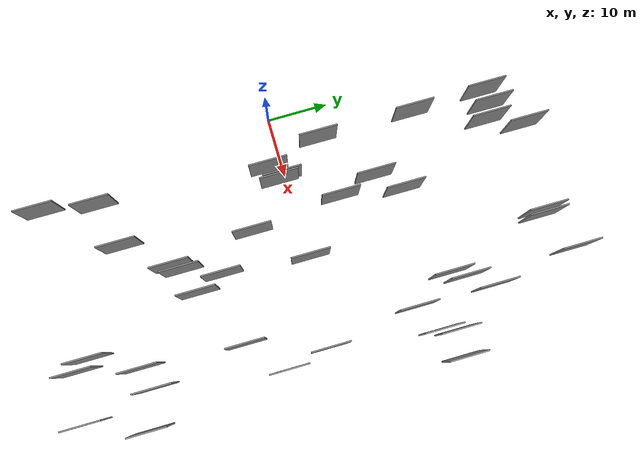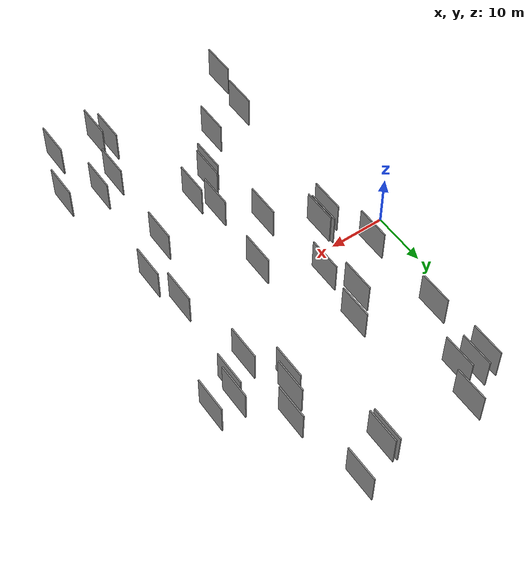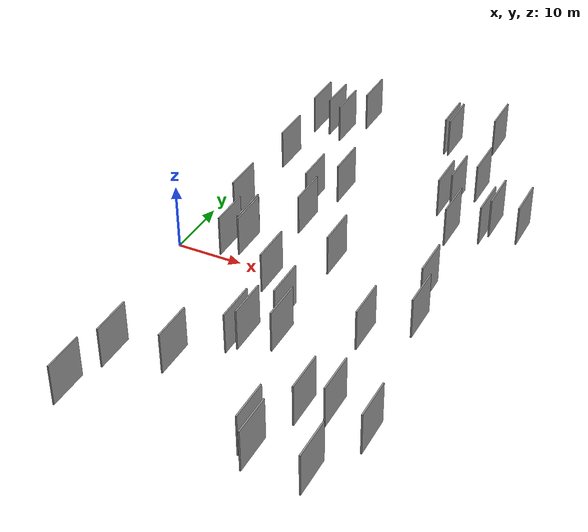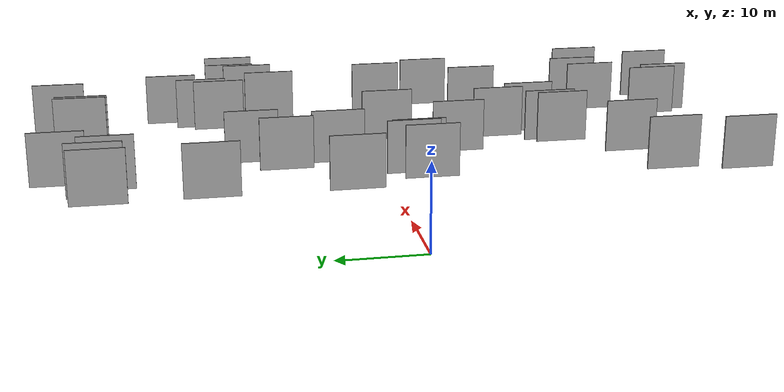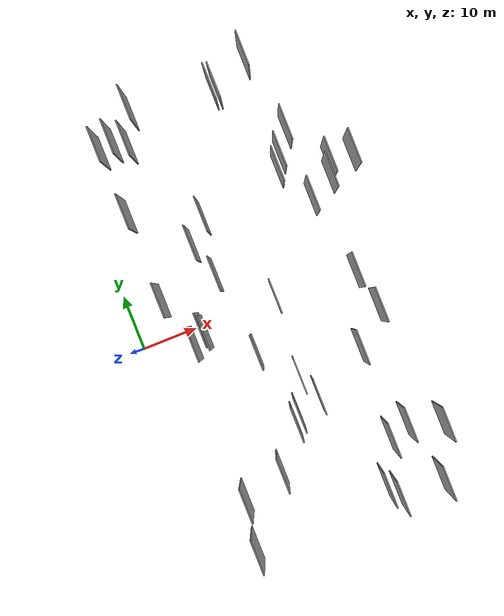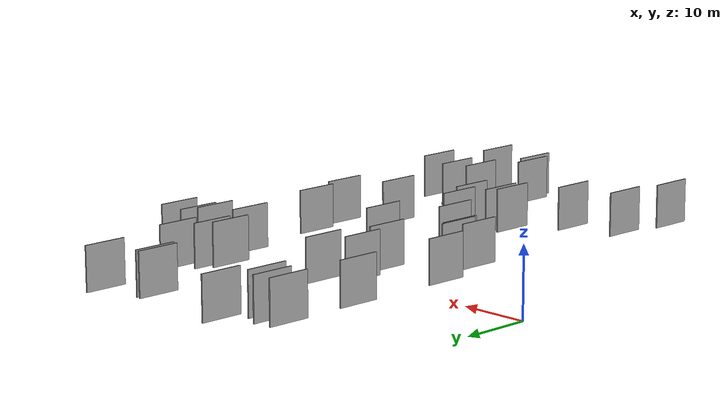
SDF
<sdf version="1.6">
 <world name="default">
  <scene>
   <sky><clouds><speed>12</speed></clouds></sky>
   <ambient>0.4 0.4 0.4 1</ambient>
   <background>0.7 0.7 0.7 1</background>
   <shadows>1</shadows>
  </scene>
  <gravity>0 0 -9.8066</gravity>
  <magnetic_field>6e-06 2.3e-05 -4.2e-05</magnetic_field>
  <physics default="0" name="default_physics" type="ode">
   <ode>
    <solver>
     <type>quick</type>
     <iters>10</iters>
     <sor>1.0</sor>
     <use_dynamic_moi_rescaling>0</use_dynamic_moi_rescaling>
    </solver>
    <constraints>
     <cfm>0</cfm>
     <erp>0.2</erp>
     <contact_max_correcting_vel>100</contact_max_correcting_vel>
     <contact_surface_layer>0.001</contact_surface_layer>
    </constraints>
   </ode>
   <max_step_size>0.004</max_step_size>
   <real_time_factor>1</real_time_factor>
   <real_time_update_rate>250</real_time_update_rate>
  </physics>
  <light name="sun" type="directional">
   <pose>0 0 10 0 0 0</pose>
   <diffuse>0.8 0.8 0.8 1</diffuse>
   <specular>0.2 0.2 0.2 1</specular>
   <attenuation>
    <range>1000</range>
    <constant>0.9</constant>
    <linear>0.01</linear>
    <quadratic>0.001</quadratic>
   </attenuation>
   <direction>-0.5 0.1 -0.9</direction>
  </light>
  <model name="grey_wall_1">
   <static>1</static>
   <pose>39.0062 -0.8579 5.0 0.000000 0.000000 1.570796</pose>
   <link name="link">
    <pose>0 0 3.00 0 0 0</pose>
    <collision name="collision"><geometry><box><size>6.00 0.2 6.00</size></box></geometry></collision>
    <visual name="visual">
     <cast_shadows>0</cast_shadows>
     <geometry><box><size>6.00 0.2 6.00</size></box></geometry>
     <material>
      <script>
       <uri>model://grey_wall/materials/scripts</uri>
       <uri>model://grey_wall/materials/textures</uri>
       <name>vrc/grey_wall</name>
      </script>
     </material>
    </visual>
   </link>
  </model>
  <model name="grey_wall_2">
   <static>1</static>
   <pose>7.4151 6.3109 5.0 0.000000 0.000000 1.570796</pose>
   <link name="link">
    <pose>0 0 3.00 0 0 0</pose>
    <collision name="collision"><geometry><box><size>6.00 0.2 6.00</size></box></geometry></collision>
    <visual name="visual">
     <cast_shadows>0</cast_shadows>
     <geometry><box><size>6.00 0.2 6.00</size></box></geometry>
     <material>
      <script>
       <uri>model://grey_wall/materials/scripts</uri>
       <uri>model://grey_wall/materials/textures</uri>
       <name>vrc/grey_wall</name>
      </script>
     </material>
    </visual>
   </link>
  </model>
  <model name="grey_wall_3">
   <static>1</static>
   <pose>9.5300 33.5643 5.0 0.000000 0.000000 1.570796</pose>
   <link name="link">
    <pose>0 0 3.00 0 0 0</pose>
    <collision name="collision"><geometry><box><size>6.00 0.2 6.00</size></box></geometry></collision>
    <visual name="visual">
     <cast_shadows>0</cast_shadows>
     <geometry><box><size>6.00 0.2 6.00</size></box></geometry>
     <material>
      <script>
       <uri>model://grey_wall/materials/scripts</uri>
       <uri>model://grey_wall/materials/textures</uri>
       <name>vrc/grey_wall</name>
      </script>
     </material>
    </visual>
   </link>
  </model>
  <model name="grey_wall_4">
   <static>1</static>
   <pose>34.2596 -28.3385 5.0 0.000000 0.000000 1.570796</pose>
   <link name="link">
    <pose>0 0 3.00 0 0 0</pose>
    <collision name="collision"><geometry><box><size>6.00 0.2 6.00</size></box></geometry></collision>
    <visual name="visual">
     <cast_shadows>0</cast_shadows>
     <geometry><box><size>6.00 0.2 6.00</size></box></geometry>
     <material>
      <script>
       <uri>model://grey_wall/materials/scripts</uri>
       <uri>model://grey_wall/materials/textures</uri>
       <name>vrc/grey_wall</name>
      </script>
     </material>
    </visual>
   </link>
  </model>
  <model name="grey_wall_5">
   <static>1</static>
   <pose>11.9339 -0.6346 5.0 0.000000 0.000000 1.570796</pose>
   <link name="link">
    <pose>0 0 3.00 0 0 0</pose>
    <collision name="collision"><geometry><box><size>6.00 0.2 6.00</size></box></geometry></collision>
    <visual name="visual">
     <cast_shadows>0</cast_shadows>
     <geometry><box><size>6.00 0.2 6.00</size></box></geometry>
     <material>
      <script>
       <uri>model://grey_wall/materials/scripts</uri>
       <uri>model://grey_wall/materials/textures</uri>
       <name>vrc/grey_wall</name>
      </script>
     </material>
    </visual>
   </link>
  </model>
  <model name="grey_wall_6">
   <static>1</static>
   <pose>15.5540 13.0088 5.0 0.000000 0.000000 1.570796</pose>
   <link name="link">
    <pose>0 0 3.00 0 0 0</pose>
    <collision name="collision"><geometry><box><size>6.00 0.2 6.00</size></box></geometry></collision>
    <visual name="visual">
     <cast_shadows>0</cast_shadows>
     <geometry><box><size>6.00 0.2 6.00</size></box></geometry>
     <material>
      <script>
       <uri>model://grey_wall/materials/scripts</uri>
       <uri>model://grey_wall/materials/textures</uri>
       <name>vrc/grey_wall</name>
      </script>
     </material>
    </visual>
   </link>
  </model>
  <model name="grey_wall_7">
   <static>1</static>
   <pose>7.3764 21.5910 5.0 0.000000 0.000000 1.570796</pose>
   <link name="link">
    <pose>0 0 3.00 0 0 0</pose>
    <collision name="collision"><geometry><box><size>6.00 0.2 6.00</size></box></geometry></collision>
    <visual name="visual">
     <cast_shadows>0</cast_shadows>
     <geometry><box><size>6.00 0.2 6.00</size></box></geometry>
     <material>
      <script>
       <uri>model://grey_wall/materials/scripts</uri>
       <uri>model://grey_wall/materials/textures</uri>
       <name>vrc/grey_wall</name>
      </script>
     </material>
    </visual>
   </link>
  </model>
  <model name="grey_wall_8">
   <static>1</static>
   <pose>15.6674 -27.0964 5.0 0.000000 0.000000 1.570796</pose>
   <link name="link">
    <pose>0 0 3.00 0 0 0</pose>
    <collision name="collision"><geometry><box><size>6.00 0.2 6.00</size></box></geometry></collision>
    <visual name="visual">
     <cast_shadows>0</cast_shadows>
     <geometry><box><size>6.00 0.2 6.00</size></box></geometry>
     <material>
      <script>
       <uri>model://grey_wall/materials/scripts</uri>
       <uri>model://grey_wall/materials/textures</uri>
       <name>vrc/grey_wall</name>
      </script>
     </material>
    </visual>
   </link>
  </model>
  <model name="grey_wall_9">
   <static>1</static>
   <pose>14.0263 37.6488 5.0 0.000000 0.000000 1.570796</pose>
   <link name="link">
    <pose>0 0 3.00 0 0 0</pose>
    <collision name="collision"><geometry><box><size>6.00 0.2 6.00</size></box></geometry></collision>
    <visual name="visual">
     <cast_shadows>0</cast_shadows>
     <geometry><box><size>6.00 0.2 6.00</size></box></geometry>
     <material>
      <script>
       <uri>model://grey_wall/materials/scripts</uri>
       <uri>model://grey_wall/materials/textures</uri>
       <name>vrc/grey_wall</name>
      </script>
     </material>
    </visual>
   </link>
  </model>
  <model name="grey_wall_10">
   <static>1</static>
   <pose>11.7766 32.4227 5.0 0.000000 0.000000 1.570796</pose>
   <link name="link">
    <pose>0 0 3.00 0 0 0</pose>
    <collision name="collision"><geometry><box><size>6.00 0.2 6.00</size></box></geometry></collision>
    <visual name="visual">
     <cast_shadows>0</cast_shadows>
     <geometry><box><size>6.00 0.2 6.00</size></box></geometry>
     <material>
      <script>
       <uri>model://grey_wall/materials/scripts</uri>
       <uri>model://grey_wall/materials/textures</uri>
       <name>vrc/grey_wall</name>
      </script>
     </material>
    </visual>
   </link>
  </model>
  <model name="grey_wall_11">
   <static>1</static>
   <pose>9.9371 -2.2960 5.0 0.000000 0.000000 1.570796</pose>
   <link name="link">
    <pose>0 0 3.00 0 0 0</pose>
    <collision name="collision"><geometry><box><size>6.00 0.2 6.00</size></box></geometry></collision>
    <visual name="visual">
     <cast_shadows>0</cast_shadows>
     <geometry><box><size>6.00 0.2 6.00</size></box></geometry>
     <material>
      <script>
       <uri>model://grey_wall/materials/scripts</uri>
       <uri>model://grey_wall/materials/textures</uri>
       <name>vrc/grey_wall</name>
      </script>
     </material>
    </visual>
   </link>
  </model>
  <model name="grey_wall_12">
   <static>1</static>
   <pose>43.3051 -29.1401 5.0 0.000000 0.000000 1.570796</pose>
   <link name="link">
    <pose>0 0 3.00 0 0 0</pose>
    <collision name="collision"><geometry><box><size>6.00 0.2 6.00</size></box></geometry></collision>
    <visual name="visual">
     <cast_shadows>0</cast_shadows>
     <geometry><box><size>6.00 0.2 6.00</size></box></geometry>
     <material>
      <script>
       <uri>model://grey_wall/materials/scripts</uri>
       <uri>model://grey_wall/materials/textures</uri>
       <name>vrc/grey_wall</name>
      </script>
     </material>
    </visual>
   </link>
  </model>
  <model name="grey_wall_13">
   <static>1</static>
   <pose>36.7653 13.1344 5.0 0.000000 0.000000 1.570796</pose>
   <link name="link">
    <pose>0 0 3.00 0 0 0</pose>
    <collision name="collision"><geometry><box><size>6.00 0.2 6.00</size></box></geometry></collision>
    <visual name="visual">
     <cast_shadows>0</cast_shadows>
     <geometry><box><size>6.00 0.2 6.00</size></box></geometry>
     <material>
      <script>
       <uri>model://grey_wall/materials/scripts</uri>
       <uri>model://grey_wall/materials/textures</uri>
       <name>vrc/grey_wall</name>
      </script>
     </material>
    </visual>
   </link>
  </model>
  <model name="grey_wall_14">
   <static>1</static>
   <pose>18.8449 16.6575 5.0 0.000000 0.000000 1.570796</pose>
   <link name="link">
    <pose>0 0 3.00 0 0 0</pose>
    <collision name="collision"><geometry><box><size>6.00 0.2 6.00</size></box></geometry></collision>
    <visual name="visual">
     <cast_shadows>0</cast_shadows>
     <geometry><box><size>6.00 0.2 6.00</size></box></geometry>
     <material>
      <script>
       <uri>model://grey_wall/materials/scripts</uri>
       <uri>model://grey_wall/materials/textures</uri>
       <name>vrc/grey_wall</name>
      </script>
     </material>
    </visual>
   </link>
  </model>
  <model name="grey_wall_15">
   <static>1</static>
   <pose>20.7677 -20.3473 5.0 0.000000 0.000000 1.570796</pose>
   <link name="link">
    <pose>0 0 3.00 0 0 0</pose>
    <collision name="collision"><geometry><box><size>6.00 0.2 6.00</size></box></geometry></collision>
    <visual name="visual">
     <cast_shadows>0</cast_shadows>
     <geometry><box><size>6.00 0.2 6.00</size></box></geometry>
     <material>
      <script>
       <uri>model://grey_wall/materials/scripts</uri>
       <uri>model://grey_wall/materials/textures</uri>
       <name>vrc/grey_wall</name>
      </script>
     </material>
    </visual>
   </link>
  </model>
  <model name="grey_wall_16">
   <static>1</static>
   <pose>40.9358 15.5813 5.0 0.000000 0.000000 1.570796</pose>
   <link name="link">
    <pose>0 0 3.00 0 0 0</pose>
    <collision name="collision"><geometry><box><size>6.00 0.2 6.00</size></box></geometry></collision>
    <visual name="visual">
     <cast_shadows>0</cast_shadows>
     <geometry><box><size>6.00 0.2 6.00</size></box></geometry>
     <material>
      <script>
       <uri>model://grey_wall/materials/scripts</uri>
       <uri>model://grey_wall/materials/textures</uri>
       <name>vrc/grey_wall</name>
      </script>
     </material>
    </visual>
   </link>
  </model>
  <model name="grey_wall_17">
   <static>1</static>
   <pose>32.2432 -37.5218 5.0 0.000000 0.000000 1.570796</pose>
   <link name="link">
    <pose>0 0 3.00 0 0 0</pose>
    <collision name="collision"><geometry><box><size>6.00 0.2 6.00</size></box></geometry></collision>
    <visual name="visual">
     <cast_shadows>0</cast_shadows>
     <geometry><box><size>6.00 0.2 6.00</size></box></geometry>
     <material>
      <script>
       <uri>model://grey_wall/materials/scripts</uri>
       <uri>model://grey_wall/materials/textures</uri>
       <name>vrc/grey_wall</name>
      </script>
     </material>
    </visual>
   </link>
  </model>
  <model name="grey_wall_18">
   <static>1</static>
   <pose>30.8083 -35.4986 5.0 0.000000 0.000000 1.570796</pose>
   <link name="link">
    <pose>0 0 3.00 0 0 0</pose>
    <collision name="collision"><geometry><box><size>6.00 0.2 6.00</size></box></geometry></collision>
    <visual name="visual">
     <cast_shadows>0</cast_shadows>
     <geometry><box><size>6.00 0.2 6.00</size></box></geometry>
     <material>
      <script>
       <uri>model://grey_wall/materials/scripts</uri>
       <uri>model://grey_wall/materials/textures</uri>
       <name>vrc/grey_wall</name>
      </script>
     </material>
    </visual>
   </link>
  </model>
  <model name="grey_wall_19">
   <static>1</static>
   <pose>34.7300 38.7609 5.0 0.000000 0.000000 1.570796</pose>
   <link name="link">
    <pose>0 0 3.00 0 0 0</pose>
    <collision name="collision"><geometry><box><size>6.00 0.2 6.00</size></box></geometry></collision>
    <visual name="visual">
     <cast_shadows>0</cast_shadows>
     <geometry><box><size>6.00 0.2 6.00</size></box></geometry>
     <material>
      <script>
       <uri>model://grey_wall/materials/scripts</uri>
       <uri>model://grey_wall/materials/textures</uri>
       <name>vrc/grey_wall</name>
      </script>
     </material>
    </visual>
   </link>
  </model>
  <model name="grey_wall_20">
   <static>1</static>
   <pose>33.2131 19.5951 5.0 0.000000 0.000000 1.570796</pose>
   <link name="link">
    <pose>0 0 3.00 0 0 0</pose>
    <collision name="collision"><geometry><box><size>6.00 0.2 6.00</size></box></geometry></collision>
    <visual name="visual">
     <cast_shadows>0</cast_shadows>
     <geometry><box><size>6.00 0.2 6.00</size></box></geometry>
     <material>
      <script>
       <uri>model://grey_wall/materials/scripts</uri>
       <uri>model://grey_wall/materials/textures</uri>
       <name>vrc/grey_wall</name>
      </script>
     </material>
    </visual>
   </link>
  </model>
  <model name="grey_wall_21">
   <static>1</static>
   <pose>27.9153 35.9146 5.0 0.000000 0.000000 1.570796</pose>
   <link name="link">
    <pose>0 0 3.00 0 0 0</pose>
    <collision name="collision"><geometry><box><size>6.00 0.2 6.00</size></box></geometry></collision>
    <visual name="visual">
     <cast_shadows>0</cast_shadows>
     <geometry><box><size>6.00 0.2 6.00</size></box></geometry>
     <material>
      <script>
       <uri>model://grey_wall/materials/scripts</uri>
       <uri>model://grey_wall/materials/textures</uri>
       <name>vrc/grey_wall</name>
      </script>
     </material>
    </visual>
   </link>
  </model>
  <model name="grey_wall_22">
   <static>1</static>
   <pose>7.0808 33.2060 5.0 0.000000 0.000000 1.570796</pose>
   <link name="link">
    <pose>0 0 3.00 0 0 0</pose>
    <collision name="collision"><geometry><box><size>6.00 0.2 6.00</size></box></geometry></collision>
    <visual name="visual">
     <cast_shadows>0</cast_shadows>
     <geometry><box><size>6.00 0.2 6.00</size></box></geometry>
     <material>
      <script>
       <uri>model://grey_wall/materials/scripts</uri>
       <uri>model://grey_wall/materials/textures</uri>
       <name>vrc/grey_wall</name>
      </script>
     </material>
    </visual>
   </link>
  </model>
  <model name="grey_wall_23">
   <static>1</static>
   <pose>24.0673 -13.3480 5.0 0.000000 0.000000 1.570796</pose>
   <link name="link">
    <pose>0 0 3.00 0 0 0</pose>
    <collision name="collision"><geometry><box><size>6.00 0.2 6.00</size></box></geometry></collision>
    <visual name="visual">
     <cast_shadows>0</cast_shadows>
     <geometry><box><size>6.00 0.2 6.00</size></box></geometry>
     <material>
      <script>
       <uri>model://grey_wall/materials/scripts</uri>
       <uri>model://grey_wall/materials/textures</uri>
       <name>vrc/grey_wall</name>
      </script>
     </material>
    </visual>
   </link>
  </model>
  <model name="grey_wall_24">
   <static>1</static>
   <pose>39.9086 -37.8984 5.0 0.000000 0.000000 1.570796</pose>
   <link name="link">
    <pose>0 0 3.00 0 0 0</pose>
    <collision name="collision"><geometry><box><size>6.00 0.2 6.00</size></box></geometry></collision>
    <visual name="visual">
     <cast_shadows>0</cast_shadows>
     <geometry><box><size>6.00 0.2 6.00</size></box></geometry>
     <material>
      <script>
       <uri>model://grey_wall/materials/scripts</uri>
       <uri>model://grey_wall/materials/textures</uri>
       <name>vrc/grey_wall</name>
      </script>
     </material>
    </visual>
   </link>
  </model>
  <model name="grey_wall_25">
   <static>1</static>
   <pose>12.2355 -1.2229 5.0 0.000000 0.000000 1.570796</pose>
   <link name="link">
    <pose>0 0 3.00 0 0 0</pose>
    <collision name="collision"><geometry><box><size>6.00 0.2 6.00</size></box></geometry></collision>
    <visual name="visual">
     <cast_shadows>0</cast_shadows>
     <geometry><box><size>6.00 0.2 6.00</size></box></geometry>
     <material>
      <script>
       <uri>model://grey_wall/materials/scripts</uri>
       <uri>model://grey_wall/materials/textures</uri>
       <name>vrc/grey_wall</name>
      </script>
     </material>
    </visual>
   </link>
  </model>
  <model name="grey_wall_26">
   <static>1</static>
   <pose>41.6468 17.8632 5.0 0.000000 0.000000 1.570796</pose>
   <link name="link">
    <pose>0 0 3.00 0 0 0</pose>
    <collision name="collision"><geometry><box><size>6.00 0.2 6.00</size></box></geometry></collision>
    <visual name="visual">
     <cast_shadows>0</cast_shadows>
     <geometry><box><size>6.00 0.2 6.00</size></box></geometry>
     <material>
      <script>
       <uri>model://grey_wall/materials/scripts</uri>
       <uri>model://grey_wall/materials/textures</uri>
       <name>vrc/grey_wall</name>
      </script>
     </material>
    </visual>
   </link>
  </model>
  <model name="grey_wall_27">
   <static>1</static>
   <pose>40.3937 -7.4421 5.0 0.000000 0.000000 1.570796</pose>
   <link name="link">
    <pose>0 0 3.00 0 0 0</pose>
    <collision name="collision"><geometry><box><size>6.00 0.2 6.00</size></box></geometry></collision>
    <visual name="visual">
     <cast_shadows>0</cast_shadows>
     <geometry><box><size>6.00 0.2 6.00</size></box></geometry>
     <material>
      <script>
       <uri>model://grey_wall/materials/scripts</uri>
       <uri>model://grey_wall/materials/textures</uri>
       <name>vrc/grey_wall</name>
      </script>
     </material>
    </visual>
   </link>
  </model>
  <model name="grey_wall_28">
   <static>1</static>
   <pose>7.0777 -37.6450 5.0 0.000000 0.000000 1.570796</pose>
   <link name="link">
    <pose>0 0 3.00 0 0 0</pose>
    <collision name="collision"><geometry><box><size>6.00 0.2 6.00</size></box></geometry></collision>
    <visual name="visual">
     <cast_shadows>0</cast_shadows>
     <geometry><box><size>6.00 0.2 6.00</size></box></geometry>
     <material>
      <script>
       <uri>model://grey_wall/materials/scripts</uri>
       <uri>model://grey_wall/materials/textures</uri>
       <name>vrc/grey_wall</name>
      </script>
     </material>
    </visual>
   </link>
  </model>
  <model name="grey_wall_29">
   <static>1</static>
   <pose>25.1050 0.0536 5.0 0.000000 0.000000 1.570796</pose>
   <link name="link">
    <pose>0 0 3.00 0 0 0</pose>
    <collision name="collision"><geometry><box><size>6.00 0.2 6.00</size></box></geometry></collision>
    <visual name="visual">
     <cast_shadows>0</cast_shadows>
     <geometry><box><size>6.00 0.2 6.00</size></box></geometry>
     <material>
      <script>
       <uri>model://grey_wall/materials/scripts</uri>
       <uri>model://grey_wall/materials/textures</uri>
       <name>vrc/grey_wall</name>
      </script>
     </material>
    </visual>
   </link>
  </model>
  <model name="grey_wall_30">
   <static>1</static>
   <pose>36.8581 25.3112 5.0 0.000000 0.000000 1.570796</pose>
   <link name="link">
    <pose>0 0 3.00 0 0 0</pose>
    <collision name="collision"><geometry><box><size>6.00 0.2 6.00</size></box></geometry></collision>
    <visual name="visual">
     <cast_shadows>0</cast_shadows>
     <geometry><box><size>6.00 0.2 6.00</size></box></geometry>
     <material>
      <script>
       <uri>model://grey_wall/materials/scripts</uri>
       <uri>model://grey_wall/materials/textures</uri>
       <name>vrc/grey_wall</name>
      </script>
     </material>
    </visual>
   </link>
  </model>
  <model name="grey_wall_31">
   <static>1</static>
   <pose>34.4015 21.6810 5.0 0.000000 0.000000 1.570796</pose>
   <link name="link">
    <pose>0 0 3.00 0 0 0</pose>
    <collision name="collision"><geometry><box><size>6.00 0.2 6.00</size></box></geometry></collision>
    <visual name="visual">
     <cast_shadows>0</cast_shadows>
     <geometry><box><size>6.00 0.2 6.00</size></box></geometry>
     <material>
      <script>
       <uri>model://grey_wall/materials/scripts</uri>
       <uri>model://grey_wall/materials/textures</uri>
       <name>vrc/grey_wall</name>
      </script>
     </material>
    </visual>
   </link>
  </model>
  <model name="grey_wall_32">
   <static>1</static>
   <pose>17.3014 7.0189 5.0 0.000000 0.000000 1.570796</pose>
   <link name="link">
    <pose>0 0 3.00 0 0 0</pose>
    <collision name="collision"><geometry><box><size>6.00 0.2 6.00</size></box></geometry></collision>
    <visual name="visual">
     <cast_shadows>0</cast_shadows>
     <geometry><box><size>6.00 0.2 6.00</size></box></geometry>
     <material>
      <script>
       <uri>model://grey_wall/materials/scripts</uri>
       <uri>model://grey_wall/materials/textures</uri>
       <name>vrc/grey_wall</name>
      </script>
     </material>
    </visual>
   </link>
  </model>
  <model name="grey_wall_33">
   <static>1</static>
   <pose>37.6393 -27.0142 5.0 0.000000 0.000000 1.570796</pose>
   <link name="link">
    <pose>0 0 3.00 0 0 0</pose>
    <collision name="collision"><geometry><box><size>6.00 0.2 6.00</size></box></geometry></collision>
    <visual name="visual">
     <cast_shadows>0</cast_shadows>
     <geometry><box><size>6.00 0.2 6.00</size></box></geometry>
     <material>
      <script>
       <uri>model://grey_wall/materials/scripts</uri>
       <uri>model://grey_wall/materials/textures</uri>
       <name>vrc/grey_wall</name>
      </script>
     </material>
    </visual>
   </link>
  </model>
  <model name="grey_wall_34">
   <static>1</static>
   <pose>28.6169 35.7764 5.0 0.000000 0.000000 1.570796</pose>
   <link name="link">
    <pose>0 0 3.00 0 0 0</pose>
    <collision name="collision"><geometry><box><size>6.00 0.2 6.00</size></box></geometry></collision>
    <visual name="visual">
     <cast_shadows>0</cast_shadows>
     <geometry><box><size>6.00 0.2 6.00</size></box></geometry>
     <material>
      <script>
       <uri>model://grey_wall/materials/scripts</uri>
       <uri>model://grey_wall/materials/textures</uri>
       <name>vrc/grey_wall</name>
      </script>
     </material>
    </visual>
   </link>
  </model>
  <model name="grey_wall_35">
   <static>1</static>
   <pose>21.7420 -19.1033 5.0 0.000000 0.000000 1.570796</pose>
   <link name="link">
    <pose>0 0 3.00 0 0 0</pose>
    <collision name="collision"><geometry><box><size>6.00 0.2 6.00</size></box></geometry></collision>
    <visual name="visual">
     <cast_shadows>0</cast_shadows>
     <geometry><box><size>6.00 0.2 6.00</size></box></geometry>
     <material>
      <script>
       <uri>model://grey_wall/materials/scripts</uri>
       <uri>model://grey_wall/materials/textures</uri>
       <name>vrc/grey_wall</name>
      </script>
     </material>
    </visual>
   </link>
  </model>
  <model name="grey_wall_36">
   <static>1</static>
   <pose>45.6757 17.7533 5.0 0.000000 0.000000 1.570796</pose>
   <link name="link">
    <pose>0 0 3.00 0 0 0</pose>
    <collision name="collision"><geometry><box><size>6.00 0.2 6.00</size></box></geometry></collision>
    <visual name="visual">
     <cast_shadows>0</cast_shadows>
     <geometry><box><size>6.00 0.2 6.00</size></box></geometry>
     <material>
      <script>
       <uri>model://grey_wall/materials/scripts</uri>
       <uri>model://grey_wall/materials/textures</uri>
       <name>vrc/grey_wall</name>
      </script>
     </material>
    </visual>
   </link>
  </model>
  <model name="grey_wall_37">
   <static>1</static>
   <pose>25.7677 -17.5620 5.0 0.000000 0.000000 1.570796</pose>
   <link name="link">
    <pose>0 0 3.00 0 0 0</pose>
    <collision name="collision"><geometry><box><size>6.00 0.2 6.00</size></box></geometry></collision>
    <visual name="visual">
     <cast_shadows>0</cast_shadows>
     <geometry><box><size>6.00 0.2 6.00</size></box></geometry>
     <material>
      <script>
       <uri>model://grey_wall/materials/scripts</uri>
       <uri>model://grey_wall/materials/textures</uri>
       <name>vrc/grey_wall</name>
      </script>
     </material>
    </visual>
   </link>
  </model>
  <model name="grey_wall_38">
   <static>1</static>
   <pose>8.3948 -29.3926 5.0 0.000000 0.000000 1.570796</pose>
   <link name="link">
    <pose>0 0 3.00 0 0 0</pose>
    <collision name="collision"><geometry><box><size>6.00 0.2 6.00</size></box></geometry></collision>
    <visual name="visual">
     <cast_shadows>0</cast_shadows>
     <geometry><box><size>6.00 0.2 6.00</size></box></geometry>
     <material>
      <script>
       <uri>model://grey_wall/materials/scripts</uri>
       <uri>model://grey_wall/materials/textures</uri>
       <name>vrc/grey_wall</name>
      </script>
     </material>
    </visual>
   </link>
  </model>
  <model name="grey_wall_39">
   <static>1</static>
   <pose>35.1015 -12.6760 5.0 0.000000 0.000000 1.570796</pose>
   <link name="link">
    <pose>0 0 3.00 0 0 0</pose>
    <collision name="collision"><geometry><box><size>6.00 0.2 6.00</size></box></geometry></collision>
    <visual name="visual">
     <cast_shadows>0</cast_shadows>
     <geometry><box><size>6.00 0.2 6.00</size></box></geometry>
     <material>
      <script>
       <uri>model://grey_wall/materials/scripts</uri>
       <uri>model://grey_wall/materials/textures</uri>
       <name>vrc/grey_wall</name>
      </script>
     </material>
    </visual>
   </link>
  </model>
  <model name="grey_wall_40">
   <static>1</static>
   <pose>18.9594 -7.2616 5.0 0.000000 0.000000 1.570796</pose>
   <link name="link">
    <pose>0 0 3.00 0 0 0</pose>
    <collision name="collision"><geometry><box><size>6.00 0.2 6.00</size></box></geometry></collision>
    <visual name="visual">
     <cast_shadows>0</cast_shadows>
     <geometry><box><size>6.00 0.2 6.00</size></box></geometry>
     <material>
      <script>
       <uri>model://grey_wall/materials/scripts</uri>
       <uri>model://grey_wall/materials/textures</uri>
       <name>vrc/grey_wall</name>
      </script>
     </material>
    </visual>
   </link>
  </model>
 </world>
</sdf>
